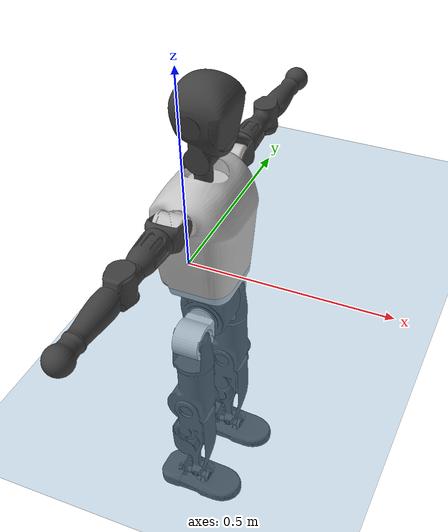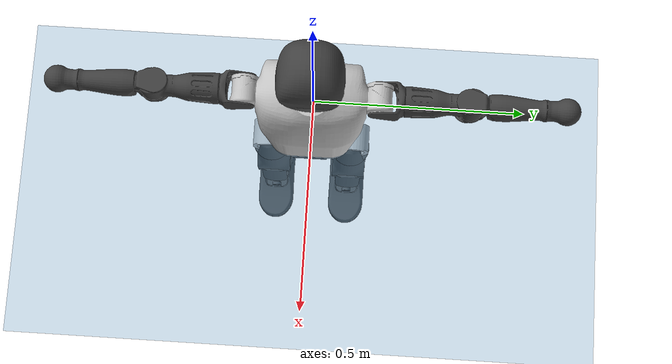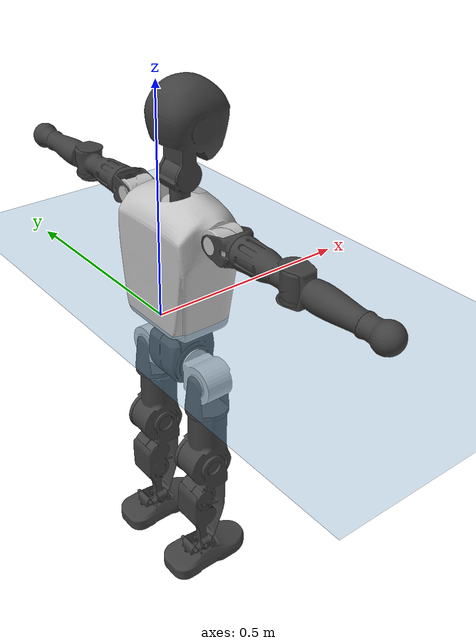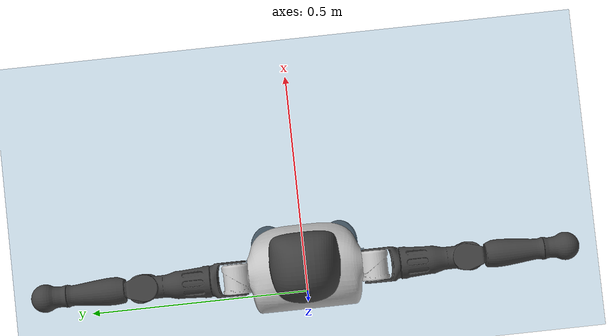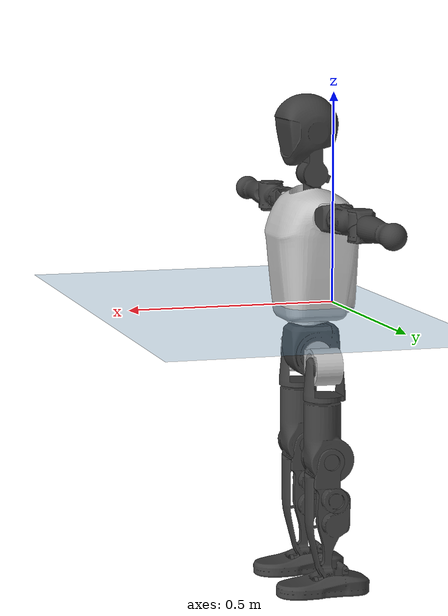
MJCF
<mujoco model="T1">
  <compiler angle="radian" assetdir="assets" balanceinertia="true" inertiafromgeom="false"/>

  <option timestep="0.005" density="1.2" viscosity="2e-05"/>

  <size nkey="1"/>

  <visual>
    <quality shadowsize="8192"/>
    <map shadowclip="0.5"/>
  </visual>

  <default>
    <default class="/">
      <joint armature="0.01" damping="0.01" frictionloss="0.1"/>
      <geom contype="0" conaffinity="0" group="1" solref="-1000 -80"/>
      <site size="0.01 0.005 0.005" group="5"/>
      <general forcelimited="true" biastype="affine" gainprm="25" biasprm="0 -25 -0.6"/>
      <default class="t1">
        <geom rgba="0.25 0.25 0.25 1"/>
        <default class="visual">
          <geom type="mesh" group="2"/>
        </default>
        <default class="collision">
          <geom group="3"/>
        </default>
        <default class="foot">
          <geom size="0.1115 0.05 0.015" type="box" condim="6" group="4" priority="1" solimp="0.015 1 0.015"/>
        </default>
        <default class="reward_collision_sphere">
          <geom group="5" rgba="1 0 0 1"/>
        </default>
      </default>
    </default>
  </default>

  <asset>
    <texture type="skybox" colorspace="auto" name="//unnamed_texture_0" builtin="gradient" rgb1="0.95 0.95 0.95" rgb2="0.95 0.95 0.95" width="100" height="600"/>
    <texture type="2d" colorspace="auto" name="texplane" builtin="checker" rgb1="0.345 0.575 0.748" rgb2="0.345 0.575 0.748" markrgb="1 1 1" width="512" height="512"/>
    <material name="MatPlane" class="/" texture="texplane" texuniform="true" texrepeat="2 2" specular="0.9"/>
    <mesh name="Trunk" class="/" file="Trunk.stl"/>
    <mesh name="H1" class="/" file="H1.stl"/>
    <mesh name="H2" class="/" file="H2.stl"/>
    <mesh name="AL1" class="/" file="AL1.stl"/>
    <mesh name="AL2" class="/" file="AL2.stl"/>
    <mesh name="AL3" class="/" file="AL3.stl"/>
    <mesh name="left_hand_link" class="/" file="left_hand_link.stl"/>
    <mesh name="AR1" class="/" file="AR1.stl"/>
    <mesh name="AR2" class="/" file="AR2.stl"/>
    <mesh name="AR3" class="/" file="AR3.stl"/>
    <mesh name="right_hand_link" class="/" file="right_hand_link.stl"/>
    <mesh name="Waist" class="/" file="Waist.stl"/>
    <mesh name="Hip_Pitch_Left" class="/" file="Hip_Pitch_Left.stl"/>
    <mesh name="Hip_Roll_Left" class="/" file="Hip_Roll_Left.stl"/>
    <mesh name="Hip_Yaw_Left" class="/" file="Hip_Yaw_Left.stl"/>
    <mesh name="Shank_Left" class="/" file="Shank_Left.stl"/>
    <mesh name="Ankle_Cross_Left" class="/" file="Ankle_Cross_Left.stl"/>
    <mesh name="left_foot_link" class="/" file="left_foot_link.stl"/>
    <mesh name="Hip_Pitch_Right" class="/" file="Hip_Pitch_Right.stl"/>
    <mesh name="Hip_Roll_Right" class="/" file="Hip_Roll_Right.stl"/>
    <mesh name="Hip_Yaw_Right" class="/" file="Hip_Yaw_Right.stl"/>
    <mesh name="Shank_Right" class="/" file="Shank_Right.stl"/>
    <mesh name="Ankle_Cross_Right" class="/" file="Ankle_Cross_Right.stl"/>
    <mesh name="right_foot_link" class="/" file="right_foot_link.stl"/>
  </asset>

  <worldbody>
    <geom name="floor" class="/" size="100 100 0.125" type="plane" group="0" material="MatPlane"/>
    <light name="toplight_shadow" class="/" pos="0 0 5" dir="0.0990148 0.0990148 -0.990148" type="directional" ambient="0.04 0.04 0.04" diffuse="0.55 0.55 0.55" specular="0.12 0.12 0.12"/>
    <light name="toplight_fill" class="/" pos="0 0 5" dir="0.0990148 0.0990148 -0.990148" type="directional" castshadow="false" ambient="0.04 0.04 0.04" diffuse="0.3 0.3 0.3" specular="0.08 0.08 0.08"/>
    <body name="trunk" childclass="t1" pos="-0.000312214 -0.000289065 -0.000858088" quat="1 -7.30218e-05 -3.47238e-05 0.000103152">
      <inertial pos="0.047417 -0.000336835 0.106639" quat="0.999954 -9.6856e-05 -0.00955713 8.381e-05" mass="9.75475" diaginertia="0.040639 0.0576793 0.0608731"/>
      <joint name="//unnamed_joint_0" type="free" armature="0" damping="0" frictionloss="0"/>
      <geom name="//unnamed_geom_1" class="visual" rgba="0.76 0.76 0.76 1" mesh="Trunk"/>
      <geom name="//unnamed_geom_2" class="collision" size="0.07035 0.0938 0.1407" pos="0.051094 0 0.122056" type="box"/>
      <geom name="//unnamed_geom_3" class="reward_collision_sphere" size="0.10787" pos="0.051094 0 0.101713"/>
      <geom name="//unnamed_geom_4" class="reward_collision_sphere" size="0.01407" pos="0.051094 0.0803509 0"/>
      <geom name="//unnamed_geom_5" class="reward_collision_sphere" size="0.01407" pos="0.051094 -0.0803509 0"/>
      <geom name="//unnamed_geom_6" class="reward_collision_sphere" size="0.01407" pos="0.051094 0.101148 0.183083"/>
      <geom name="//unnamed_geom_7" class="reward_collision_sphere" size="0.01407" pos="0.051094 -0.101148 0.183083"/>
      <site name="imu" pos="-0.00232346 0.00310253 -0.00186968" size="0.00938"/>
      <camera name="track" pos="0 -1.89061 0" quat="0.707107 0.707107 0 0" mode="trackcom"/>
      <camera name="ego_camera" pos="0.103891 0 0.427194" quat="-0.5 -0.5 0.5 0.5"/>
      <body name="H1" pos="0.0527181 -0.000728495 0.247153" quat="1 -0.000126008 -0.000137165 -1.72781e-05">
        <inertial pos="-0.00120221 -0.00185594 0.0583132" quat="0.763818 -0.014584 0.000368003 0.645267" mass="0.369695" diaginertia="0.000108788 0.000168698 0.000163246"/>
        <joint name="AAHead_yaw" pos="0 0 0" axis="0.000441557 -0.00459856 0.999989" stiffness="0.00186265" range="-1.56096 1.57158" armature="0.00960023" damping="0.00594131" frictionloss="0.0947241"/>
        <geom name="//unnamed_geom_8" class="visual" mesh="H1"/>
        <body name="H2" pos="0.00040467 0.000724704 0.0626387" quat="1 9.2249e-05 0.00031218 -0.000293744">
          <inertial pos="0.00608513 0.000729218 0.10066" quat="0.988725 0.105446 -0.0723517 -0.0779012" mass="0.518307" diaginertia="0.000910354 0.0014578 0.00185536"/>
          <joint name="Head_pitch" pos="0 0 0" axis="0.00327808 -0.999994 -0.00092834" range="-1.23161 0.367781" armature="0.00905921" damping="0.0104888" frictionloss="0.0928844"/>
          <geom name="//unnamed_geom_9" class="visual" mesh="H2"/>
          <geom name="//unnamed_geom_10" class="collision" size="0.07504" pos="0.00851566 0 0.111884"/>
          <geom name="//unnamed_geom_11" class="reward_collision_sphere" size="0.08442" pos="0.0170313 0 0.101713"/>
        </body>
      </body>
      <body name="AL1" pos="0.0499301 0.101322 0.222788" quat="1 0.000153253 0.000355798 0.00016071">
        <inertial pos="-0.000442869 0.041839 -0.000118375" quat="0.504818 0.495719 -0.505326 0.494032" mass="0.435693" diaginertia="0.000604884 0.000979025 0.000319917"/>
        <joint name="Left_Shoulder_Pitch" pos="0 0 0" axis="-0.000323068 0.999997 -0.00235824" range="-3.31978 1.22235" armature="0.00934864" damping="0.00577125" frictionloss="0.0980267"/>
        <geom name="//unnamed_geom_12" class="visual" rgba="0.76 0.76 0.76 1" mesh="AL1"/>
        <body name="AL2" pos="0.00173963 0.044682 5.49062e-07" quat="1 7.37121e-05 -2.95973e-05 3.64987e-05">
          <inertial pos="0.0034658 0.0353215 -0.000333542" quat="0.487181 0.512804 -0.487367 0.512016" mass="0.130533" diaginertia="0.000177722 0.000257597 0.000188229"/>
          <joint name="Left_Shoulder_Roll" pos="0 0 0" axis="-0.999999 0.00018495 0.00168787" range="-1.56549 1.74753" armature="0.00919194" damping="0.00950505" frictionloss="0.0939497"/>
          <geom name="//unnamed_geom_13" class="visual" mesh="AL2"/>
          <body name="AL3" pos="0.000111999 0.0574339 0.000378934" quat="1 9.36815e-05 4.23443e-05 -4.83814e-06">
            <inertial pos="-0.00118392 0.0805918 -0.000286182" quat="0.704513 0.709685 0.000847435 -0.00272569" mass="0.839139" diaginertia="0.0058224 0.00955884 0.000669879"/>
            <joint name="Left_Elbow_Pitch" pos="0 0 0" axis="-0.000620727 -0.999991 -0.00408452" range="-2.26285 2.25857" armature="0.00890103" damping="0.00261504" frictionloss="0.0973909"/>
            <geom name="//unnamed_geom_14" class="visual" mesh="AL3"/>
            <geom name="//unnamed_geom_15" class="collision" size="0.02814 0.07035" pos="0 0.0472652 0" quat="0.707105 0.707108 0 0" type="cylinder"/>
            <geom name="//unnamed_geom_16" class="reward_collision_sphere" size="0.033768"/>
            <body name="left_hand_link" pos="0.00125622 0.138724 -2.19579e-05" quat="1 -8.95896e-05 -0.000333908 -7.00355e-05">
              <inertial pos="0.000306247 0.104169 -0.00039233" quat="0.707789 0.706423 -0.000206035 -0.000448611" mass="0.267812" diaginertia="0.00364915 0.00612371 0.000230342"/>
              <joint name="Left_Elbow_Yaw" pos="0 0 0" axis="0.000148663 -0.00755711 0.999971" stiffness="0.00216393" range="-2.43118 -0.0036807" armature="0.00956177" damping="0.0106108" frictionloss="0.0980511"/>
              <geom name="//unnamed_geom_17" class="visual" mesh="left_hand_link"/>
              <geom name="//unnamed_geom_18" class="collision" size="0.02814 0.082075" pos="0 0.12289 0" quat="0.707105 0.707108 0 0" type="cylinder"/>
              <geom name="//unnamed_geom_19" class="reward_collision_sphere" size="0.0469"/>
              <geom name="//unnamed_geom_20" class="reward_collision_sphere" size="0.03283" pos="0 0.103983 0"/>
              <geom name="//unnamed_geom_21" class="reward_collision_sphere" size="0.03283" pos="0 0.20324 0"/>
            </body>
          </body>
        </body>
      </body>
      <body name="AR1" pos="0.048738 -0.100752 0.222376" quat="1 0.000109546 0.000571363 1.34515e-05">
        <inertial pos="-0.00138954 -0.0428267 -0.000816611" quat="0.500448 0.497422 -0.504645 0.497449" mass="0.431498" diaginertia="0.000616316 0.000983151 0.000319634"/>
        <joint name="Right_Shoulder_Pitch" pos="0 0 0" axis="-0.000635156 -0.999999 -0.000831582" range="-1.22567 3.30715" armature="0.00939631" damping="0.0046863" frictionloss="0.0974475"/>
        <geom name="//unnamed_geom_22" class="visual" rgba="0.76 0.76 0.76 1" mesh="AR1"/>
        <body name="AR2" pos="-0.000927722 -0.0437181 0.000232878" quat="1 -5.06252e-05 4.35531e-05 -1.26531e-05">
          <inertial pos="0.00303392 -0.035579 -0.000522118" quat="0.51173 0.487974 -0.511775 0.487955" mass="0.132391" diaginertia="0.000178997 0.000260672 0.000190041"/>
          <joint name="Right_Shoulder_Roll" pos="0 0 0" axis="-0.999994 -0.000825579 -0.00333398" stiffness="0.00339229" range="-1.75741 1.58437" armature="0.00965218" damping="0.00318738" frictionloss="0.0957304"/>
          <geom name="//unnamed_geom_23" class="visual" mesh="AR2"/>
          <body name="AR3" pos="-0.000474605 -0.0579395 0.000499503" quat="1 1.85097e-05 6.48161e-05 6.66161e-05">
            <inertial pos="-0.000259888 -0.0811192 -0.000266694" quat="0.708903 0.705299 0.00317666 0.000603088" mass="0.846573" diaginertia="0.00570887 0.00975048 0.000671584"/>
            <joint name="Right_Elbow_Pitch" pos="0 0 0" axis="-0.00279259 0.999995 -0.00162456" stiffness="0.000124938" range="-2.28997 2.28193" armature="0.00938776" damping="0.00549073" frictionloss="0.0933625"/>
            <geom name="//unnamed_geom_24" class="visual" mesh="AR3"/>
            <geom name="//unnamed_geom_25" class="collision" size="0.02814 0.07035" pos="0 -0.0472652 0" quat="0.707105 0.707108 0 0" type="cylinder"/>
            <geom name="//unnamed_geom_26" class="reward_collision_sphere" size="0.033768"/>
            <body name="right_hand_link" pos="-0.000930553 -0.139042 -0.000782197" quat="1 -0.000156242 -2.69902e-05 -0.000216524">
              <inertial pos="1.09819e-05 -0.103962 0.00157878" quat="0.706585 0.707628 0.000189931 0.000199071" mass="0.270045" diaginertia="0.00366408 0.00612685 0.000235791"/>
              <joint name="Right_Elbow_Yaw" pos="0 0 0" axis="-0.00335459 -0.000552211 0.999994" range="0.00640222 2.4385" armature="0.00939864" damping="0.0110978" frictionloss="0.0898134"/>
              <geom name="//unnamed_geom_27" class="visual" mesh="right_hand_link"/>
              <geom name="//unnamed_geom_28" class="collision" size="0.02814 0.082075" pos="0 -0.12289 0" quat="0.707105 0.707108 0 0" type="cylinder"/>
              <geom name="//unnamed_geom_29" class="reward_collision_sphere" size="0.0469"/>
              <geom name="//unnamed_geom_30" class="reward_collision_sphere" size="0.03283" pos="0 -0.103983 0"/>
              <geom name="//unnamed_geom_31" class="reward_collision_sphere" size="0.03283" pos="0 -0.20324 0"/>
            </body>
          </body>
        </body>
      </body>
      <body name="Waist" pos="0.0535081 -0.00159167 -0.117062" quat="1 9.9536e-05 2.88756e-05 3.63144e-05">
        <inertial pos="0.000768994 -0.00137446 0.00755856" quat="0.983659 0.000388518 -0.180021 0.00270649" mass="2.1287" diaginertia="0.00238306 0.00398754 0.00511884"/>
        <joint name="Waist" pos="0 0 0" axis="-0.00280205 0.00180777 0.999994" range="-1.57158 1.57033" armature="0.00972789" damping="0.0145853" frictionloss="0.092882"/>
        <geom name="//unnamed_geom_32" class="visual" mesh="Waist"/>
        <body name="Hip_Pitch_Left" pos="0.000120494 0.0996166 -0.000768912" quat="1 0.000272175 -0.000712903 -0.000293685">
          <inertial pos="0.00153797 -0.00672107 -0.0181815" quat="0.975402 0.219956 0.0144265 0.00141335" mass="0.828014" diaginertia="0.000800863 0.00108739 0.00136214"/>
          <joint name="Left_Hip_Pitch" pos="0 0 0" axis="-0.000153672 0.999999 -0.00105847" stiffness="0.00206145" range="-1.80554 1.56756" armature="0.00967432" damping="0.00880862" frictionloss="0.0969882"/>
          <geom name="//unnamed_geom_33" class="visual" rgba="0.76 0.76 0.76 1" mesh="Hip_Pitch_Left"/>
          <body name="Hip_Roll_Left" pos="0.00106345 0.000515502 -0.0217385" quat="1 0.00045526 1.6996e-07 6.66018e-06">
            <inertial pos="0.000372538 0.00081147 -0.0550759" quat="0.7071 -0.00603198 -0.00598749 0.707063" mass="0.322294" diaginertia="0.000778129 0.00114582 0.000561129"/>
            <joint name="Left_Hip_Roll" pos="0 0 0" axis="-0.999996 0.00110099 0.00254652" range="-1.56845 0.200147" armature="0.00903551" damping="0.00861541" frictionloss="0.0934876"/>
            <geom name="//unnamed_geom_34" class="visual" mesh="Hip_Roll_Left"/>
            <geom name="//unnamed_geom_35" class="reward_collision_sphere" size="0.05159"/>
            <body name="Hip_Yaw_Left" pos="0.00189738 -0.0014327 -0.0847002" quat="1 0.000141854 0.000145872 -3.96454e-05">
              <inertial pos="-0.0060685 0.000621544 -0.0905525" quat="0.696685 -0.0331401 -0.0309945 0.71594" mass="1.78012" diaginertia="0.0114509 0.0189793 0.0028178"/>
              <joint name="Left_Hip_Yaw" pos="0 0 0" axis="-0.000283868 1.53077e-05 -1" range="-0.999631 1.0094" armature="0.00939576" damping="0.0134295" frictionloss="0.089682"/>
              <geom name="//unnamed_geom_36" class="visual" mesh="Hip_Yaw_Left"/>
              <geom name="//unnamed_geom_37" class="collision" size="0.0469 0.07504" type="cylinder"/>
              <body name="Shank_Left" pos="-0.0104924 0.000624044 -0.135846" quat="1 0.000202407 0.000211167 0.000124179">
                <inertial pos="-0.00494308 0.00137182 -0.126992" quat="0.997534 0.0017284 -0.0240249 0.0659232" mass="1.41055" diaginertia="0.0154701 0.0256323 0.00201231"/>
                <joint name="Left_Knee_Pitch" pos="0 0 0" axis="2.28424e-05 0.999996 -0.00272911" range="-0.00337226 2.34338" armature="0.00908122" damping="0.0137201" frictionloss="0.0939245"/>
                <geom name="//unnamed_geom_38" class="visual" mesh="Shank_Left"/>
                <geom name="//unnamed_geom_39" class="collision" size="0.0469 0.07035" pos="0 0 -0.122056" type="cylinder"/>
                <geom name="//unnamed_geom_40" class="reward_collision_sphere" size="0.06097"/>
                <body name="Ankle_Cross_Left" pos="-0.00089002 0.000455476 -0.284862" quat="1 -4.19635e-07 -0.000289907 0.000117943">
                  <inertial pos="-0.00306626 -0.000217185 -0.0081248" quat="0.443418 0.548459 0.552404 0.444322" mass="0.0612115" diaginertia="1.29571e-05 1.94421e-05 1.24072e-05"/>
                  <joint name="Left_Ankle_Pitch" pos="0 0 0" axis="-0.000200502 1 0.000387449" range="-0.883815 0.358952" armature="0.00895419" damping="0.00166357" frictionloss="0.0895139"/>
                  <geom name="//unnamed_geom_41" class="visual" mesh="Ankle_Cross_Left"/>
                  <body name="left_foot_link" pos="0.000480912 0.000515929 -0.0125184" quat="1 -0.00025984 0.000201348 -0.000190207">
                    <inertial pos="-0.000343293 0.00053817 -0.00936703" quat="-0.00187782 0.621684 0.00135252 0.783265" mass="0.57482" diaginertia="0.0012372 0.00182382 0.00244872"/>
                    <joint name="Left_Ankle_Roll" pos="0 0 0" axis="-0.999988 -0.00159003 -0.00468801" range="-0.439124 0.454779" armature="0.00941373" damping="0.00816094" frictionloss="0.0996497"/>
                    <geom name="//unnamed_geom_42" class="visual" mesh="left_foot_link"/>
                    <geom name="left_foot" class="foot" size="0.102704 0.0466511 0.0150491" pos="0.00851566 0 -0.0152569"/>
                    <geom name="//unnamed_geom_44" class="reward_collision_sphere" size="0.048776" pos="0.00851566 0 -0.0152569"/>
                    <geom name="//unnamed_geom_45" class="reward_collision_sphere" size="0.02814" pos="0.0808988 -0.021742 -0.0152569"/>
                    <geom name="//unnamed_geom_46" class="reward_collision_sphere" size="0.02814" pos="-0.0596097 -0.021742 -0.0152569"/>
                    <site name="left_foot" class="foot" pos="0.00851566 0 -0.0152569" size="0.00938"/>
                  </body>
                </body>
              </body>
            </body>
          </body>
        </body>
        <body name="Hip_Pitch_Right" pos="-0.000516316 -0.0999958 -0.000120537" quat="1 3.5627e-06 -0.000308542 0.000119536">
          <inertial pos="0.000726164 0.00705411 -0.0174838" quat="0.972753 -0.231311 0.0155817 -0.00215178" mass="0.837786" diaginertia="0.000799103 0.00108039 0.00134742"/>
          <joint name="Right_Hip_Pitch" pos="0 0 0" axis="0.00216474 -0.999997 -0.000780438" range="-1.57735 1.81798" armature="0.00932705" damping="0.0075454" frictionloss="0.0947646"/>
          <geom name="//unnamed_geom_47" class="visual" rgba="0.76 0.76 0.76 1" mesh="Hip_Pitch_Right"/>
          <body name="Hip_Roll_Right" pos="-0.000828384 -0.000194012 -0.0205226" quat="1 3.68452e-05 0.000126051 -4.31353e-05">
            <inertial pos="0.00133282 -0.00110387 -0.0546481" quat="0.708113 -0.00785346 -0.00823519 0.706008" mass="0.321383" diaginertia="0.000781964 0.00114685 0.000563761"/>
            <joint name="Right_Hip_Roll" pos="0 0 0" axis="-1 0.000278709 0.000347164" range="-0.211427 1.57158" armature="0.00983406" damping="0.00649256" frictionloss="0.0943711"/>
            <geom name="//unnamed_geom_48" class="visual" mesh="Hip_Roll_Right"/>
            <geom name="//unnamed_geom_49" class="reward_collision_sphere" size="0.05159"/>
            <body name="Hip_Yaw_Right" pos="0.000352054 0.00108644 -0.0834495" quat="1 -1.98486e-05 9.09811e-05 -7.14123e-05">
              <inertial pos="-0.00499273 -0.00060314 -0.0917353" quat="0.7148 -0.029536 -0.0338152 0.697886" mass="1.797" diaginertia="0.0115783 0.0192749 0.0028473"/>
              <joint name="Right_Hip_Yaw" pos="0 0 0" axis="0.00506458 0.001974 -0.999985" stiffness="0.00164583" range="-1.00586 1.02312" armature="0.00931924" damping="0.0116084" frictionloss="0.0932939"/>
              <geom name="//unnamed_geom_50" class="visual" mesh="Hip_Yaw_Right"/>
              <geom name="//unnamed_geom_51" class="collision" size="0.0469 0.07504" type="cylinder"/>
              <body name="Shank_Right" pos="-0.0121921 -0.000900558 -0.137363" quat="1 2.18999e-05 2.81638e-05 -1.47995e-05">
                <inertial pos="-0.00423078 6.8025e-05 -0.12408" quat="0.999239 -0.00151598 -0.0229796 -0.0314744" mass="1.49758" diaginertia="0.0158008 0.0264549 0.00214651"/>
                <joint name="Right_Knee_Pitch" pos="0 0 0" axis="-0.00964273 -0.999953 -0.00107984" range="-2.33978 0.00554189" armature="0.00897231" damping="0.00703121" frictionloss="0.0913233"/>
                <geom name="//unnamed_geom_52" class="visual" mesh="Shank_Right"/>
                <geom name="//unnamed_geom_53" class="collision" size="0.0469 0.07035" pos="0 0 -0.122056" type="cylinder"/>
                <geom name="//unnamed_geom_54" class="reward_collision_sphere" size="0.06097"/>
                <body name="Ankle_Cross_Right" pos="0.00120157 -0.00140596 -0.285016" quat="1 0.000200822 -0.000231503 -4.33048e-05">
                  <inertial pos="-0.00360127 1.8079e-05 -0.00848386" quat="0.443193 0.551195 0.550987 0.442919" mass="0.0599487" diaginertia="1.29364e-05 1.93481e-05 1.23492e-05"/>
                  <joint name="Right_Ankle_Pitch" pos="0 0 0" axis="0.000215016 -1 0.000183333" range="-0.33371 0.882661" armature="0.0095059" damping="0.00497217" frictionloss="0.0935563"/>
                  <geom name="//unnamed_geom_55" class="visual" mesh="Ankle_Cross_Right"/>
                  <body name="right_foot_link" pos="3.01092e-05 -0.000875626 -0.011601" quat="1 0.000160367 -0.000113517 -8.39643e-05">
                    <inertial pos="0.000549512 -0.000383301 -0.00938339" quat="-6.91153e-05 0.620769 0.000129581 0.783994" mass="0.564894" diaginertia="0.00120023 0.0018189 0.00238707"/>
                    <joint name="Right_Ankle_Roll" pos="0 0 0" axis="-1 0.00029688 6.50965e-05" range="-0.457452 0.455562" armature="0.00936288" damping="0.00868628" frictionloss="0.0958442"/>
                    <geom name="//unnamed_geom_56" class="visual" mesh="right_foot_link"/>
                    <geom name="right_foot" class="foot" size="0.0983425 0.0454141 0.0141201" pos="0.00851566 0 -0.0152569"/>
                    <geom name="//unnamed_geom_58" class="reward_collision_sphere" size="0.03752"/>
                    <geom name="//unnamed_geom_59" class="reward_collision_sphere" size="0.02814" pos="0.00851566 0 -0.0152569"/>
                    <geom name="//unnamed_geom_60" class="reward_collision_sphere" size="0.02814" pos="0.0808988 0.021742 -0.0152569"/>
                    <geom name="//unnamed_geom_61" class="reward_collision_sphere" size="0.02814" pos="-0.0596097 0.021742 -0.0152569"/>
                    <site name="right_foot" class="foot" pos="0.00851566 0 -0.0152569" size="0.00938"/>
                  </body>
                </body>
              </body>
            </body>
          </body>
        </body>
      </body>
    </body>
  </worldbody>

  <contact>
    <pair class="/" geom1="floor" geom2="left_foot" name="//unnamed_contact_0"/>
    <pair class="/" geom1="floor" geom2="right_foot" name="//unnamed_contact_1"/>
  </contact>

  <actuator>
    <general name="AAHead_yaw" class="/" joint="AAHead_yaw" forcerange="-6.55703 6.55703" gainprm="23.0384" biasprm="0 -23.0384 -0.560826"/>
    <general name="Head_pitch" class="/" joint="Head_pitch" forcerange="-6.65895 6.65895" gainprm="23.0384" biasprm="0 -23.0384 -0.560826"/>
    <general name="Left_Shoulder_Pitch" class="/" joint="Left_Shoulder_Pitch" forcerange="-16.8711 16.8711" gainprm="23.0384" biasprm="0 -23.0384 -0.560826"/>
    <general name="Left_Shoulder_Roll" class="/" joint="Left_Shoulder_Roll" forcerange="-17.346 17.346" gainprm="23.0384" biasprm="0 -23.0384 -0.560826"/>
    <general name="Left_Elbow_Pitch" class="/" joint="Left_Elbow_Pitch" forcerange="-16.5081 16.5081" gainprm="23.0384" biasprm="0 -23.0384 -0.560826"/>
    <general name="Left_Elbow_Yaw" class="/" joint="Left_Elbow_Yaw" forcerange="-17.0763 17.0763" gainprm="23.0384" biasprm="0 -23.0384 -0.560826"/>
    <general name="Right_Shoulder_Pitch" class="/" joint="Right_Shoulder_Pitch" forcerange="-17.2115 17.2115" gainprm="23.0384" biasprm="0 -23.0384 -0.560826"/>
    <general name="Right_Shoulder_Roll" class="/" joint="Right_Shoulder_Roll" forcerange="-17.2133 17.2133" gainprm="23.0384" biasprm="0 -23.0384 -0.560826"/>
    <general name="Right_Elbow_Pitch" class="/" joint="Right_Elbow_Pitch" forcerange="-16.8931 16.8931" gainprm="23.0384" biasprm="0 -23.0384 -0.560826"/>
    <general name="Right_Elbow_Yaw" class="/" joint="Right_Elbow_Yaw" forcerange="-16.7386 16.7386" gainprm="23.0384" biasprm="0 -23.0384 -0.560826"/>
    <general name="Waist" class="/" joint="Waist" forcerange="-28.5736 28.5736" gainprm="23.0384" biasprm="0 -23.0384 -0.560826"/>
    <general name="Left_Hip_Pitch" class="/" joint="Left_Hip_Pitch" forcerange="-42.8202 42.8202" gainprm="23.0384" biasprm="0 -23.0384 -0.560826"/>
    <general name="Left_Hip_Roll" class="/" joint="Left_Hip_Roll" forcerange="-28.413 28.413" gainprm="23.0384" biasprm="0 -23.0384 -0.560826"/>
    <general name="Left_Hip_Yaw" class="/" joint="Left_Hip_Yaw" forcerange="-27.4351 27.4351" gainprm="23.0384" biasprm="0 -23.0384 -0.560826"/>
    <general name="Left_Knee_Pitch" class="/" joint="Left_Knee_Pitch" forcerange="-54.376 54.376" gainprm="23.0384" biasprm="0 -23.0384 -0.560826"/>
    <general name="Left_Ankle_Pitch" class="/" joint="Left_Ankle_Pitch" forcerange="-18.91 18.91" gainprm="23.0384" biasprm="0 -23.0384 -0.560826"/>
    <general name="Left_Ankle_Roll" class="/" joint="Left_Ankle_Roll" forcerange="-14.0797 14.0797" gainprm="23.0384" biasprm="0 -23.0384 -0.560826"/>
    <general name="Right_Hip_Pitch" class="/" joint="Right_Hip_Pitch" forcerange="-42.2223 42.2223" gainprm="23.0384" biasprm="0 -23.0384 -0.560826"/>
    <general name="Right_Hip_Roll" class="/" joint="Right_Hip_Roll" forcerange="-27.9333 27.9333" gainprm="23.0384" biasprm="0 -23.0384 -0.560826"/>
    <general name="Right_Hip_Yaw" class="/" joint="Right_Hip_Yaw" forcerange="-27.2778 27.2778" gainprm="23.0384" biasprm="0 -23.0384 -0.560826"/>
    <general name="Right_Knee_Pitch" class="/" joint="Right_Knee_Pitch" forcerange="-56.3193 56.3193" gainprm="23.0384" biasprm="0 -23.0384 -0.560826"/>
    <general name="Right_Ankle_Pitch" class="/" joint="Right_Ankle_Pitch" forcerange="-18.8859 18.8859" gainprm="23.0384" biasprm="0 -23.0384 -0.560826"/>
    <general name="Right_Ankle_Roll" class="/" joint="Right_Ankle_Roll" forcerange="-14.0577 14.0577" gainprm="23.0384" biasprm="0 -23.0384 -0.560826"/>
  </actuator>

  <sensor>
    <gyro site="imu" name="imu_angular_velocity"/>
    <velocimeter site="imu" name="imu_linear_velocity"/>
    <framelinvel objtype="site" objname="left_foot" name="left_foot_global_linear_velocity"/>
    <framelinvel objtype="site" objname="right_foot" name="right_foot_global_linear_velocity"/>
  </sensor>

  <keyframe>
    <key name="home" qpos="0 0 0.6385 1 0 0 0 0 0 0 1.4 0 -0.4 0 -1.4 0 0.4 0 -0.4 0 0 0.8 -0.4 0 0.4 0 0 -0.8 0.4 0"/>
  </keyframe>
</mujoco>
